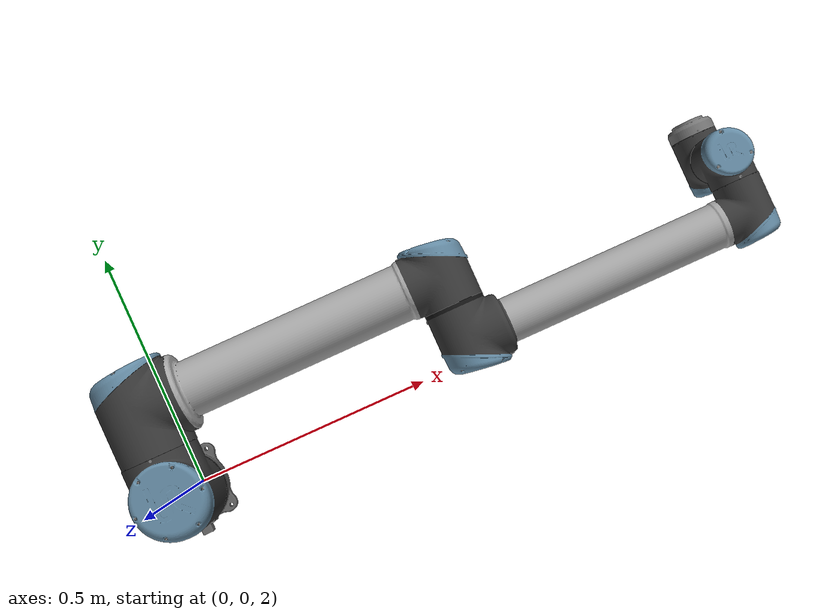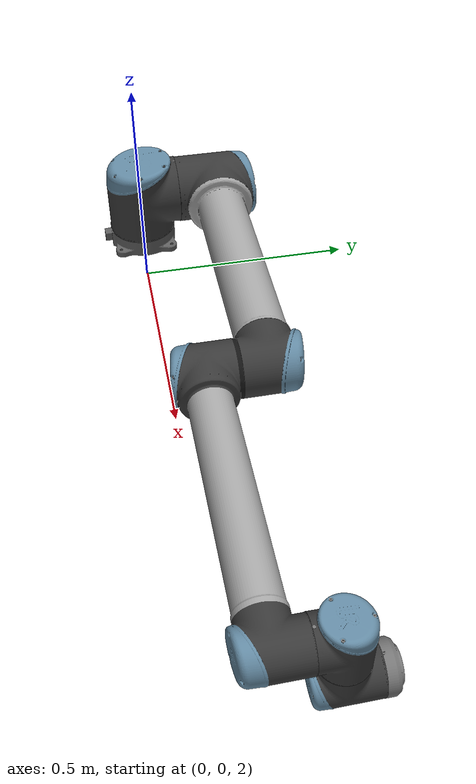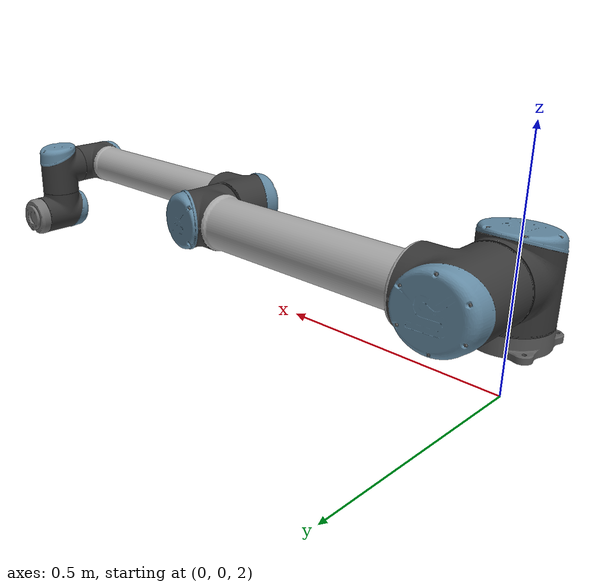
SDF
<sdf version="1.9">
 <world name="panda_world">
  <physics name="1ms" type="ignored">
   <max_step_size>0.001</max_step_size>
   <real_time_factor>1</real_time_factor>
   <real_time_update_rate>1000</real_time_update_rate>
  </physics>
  <plugin name="ignition::gazebo::systems::Physics" filename="ignition-gazebo-physics-system"/>
  <plugin name="ignition::gazebo::systems::UserCommands" filename="ignition-gazebo-user-commands-system"/>
  <plugin name="ignition::gazebo::systems::SceneBroadcaster" filename="ignition-gazebo-scene-broadcaster-system"/>
  <gravity>0 0 -9.8</gravity>
  <magnetic_field>6e-06 2.3e-05 -4.2e-05</magnetic_field>
  <atmosphere type="adiabatic"/>
  <scene><ambient>0.4 0.4 0.4 1</ambient><background>0.7 0.7 0.7 1</background><shadows>true</shadows></scene>
  <model name="ground_plane">
   <static>true</static>
   <link name="link">
    <collision name="collision">
     <geometry><plane><normal>0 0 1</normal><size>100 100</size></plane></geometry>
    </collision>
    <visual name="visual">
     <geometry><plane><normal>0 0 1</normal><size>100 100</size></plane></geometry>
     <material>
      <ambient>0.8 0.8 0.8 1</ambient>
      <diffuse>0.8 0.8 0.8 1</diffuse>
      <specular>0.8 0.8 0.8 1</specular>
     </material>
    </visual>
    <inertial>
     <mass>1</mass>
     <inertia><ixx>1</ixx><ixy>0</ixy><ixz>0</ixz><iyy>1</iyy><iyz>0</iyz><izz>1</izz></inertia>
    </inertial>
   </link>
  </model>
  <model name="ur10">
   <plugin filename="libjoint_command_plugin.so" name="JointCommandSystemPlugin">
    <publish>joint_positions</publish>
    <command>joint_commands</command>
   </plugin>
   <joint name="world_joint" type="fixed">
    <pose relative_to="__model__">0 0 2.115 0 -0 0</pose>
    <parent>world</parent>
    <child>base_link</child>
   </joint>
   <link name="base_link">
    <pose relative_to="world_joint">0 0 0 0 -0 0</pose>
    <inertial>
     <mass>4</mass>
     <inertia>
      <ixx>0.00610633</ixx>
      <ixy>0</ixy>
      <ixz>0</ixz>
      <iyy>0.00610633</iyy>
      <iyz>0</iyz>
      <izz>0.01125</izz>
     </inertia>
    </inertial>
    <collision name="base_link_collision">
     <geometry>
      <mesh>
       <scale>1 1 1</scale>
       <uri>file:///home/sam/dev/cpp/arm_ws/src/arm_simulator/meshes/ur10/collision/base.stl</uri>
      </mesh>
     </geometry>
    </collision>
    <visual name="base_link_visual">
     <geometry>
      <mesh>
       <scale>1 1 1</scale>
       <uri>file:///home/sam/dev/cpp/arm_ws/src/arm_simulator/meshes/ur10/visual/base.dae</uri>
      </mesh>
     </geometry>
    </visual>
   </link>
   <joint name="shoulder_pan_joint" type="revolute">
    <pose relative_to="base_link">0 0 0.1273 0 -0 0</pose>
    <parent>base_link</parent>
    <child>shoulder_link</child>
    <axis>
     <xyz>0 0 1</xyz>
     <limit><lower>-6.28319</lower><upper>6.28319</upper><effort>330</effort><velocity>2.16</velocity></limit>
     <dynamics>
      <damping>0</damping>
      <friction>0</friction>
      <spring_reference>0</spring_reference>
      <spring_stiffness>0</spring_stiffness>
     </dynamics>
    </axis>
    <initial_position>0.5</initial_position>
   </joint>
   <link name="shoulder_link">
    <pose relative_to="shoulder_pan_joint">0 0 0 0 -0 0</pose>
    <inertial>
     <mass>7.778</mass>
     <inertia>
      <ixx>0.0314743</ixx>
      <ixy>0</ixy>
      <ixz>0</ixz>
      <iyy>0.0314743</iyy>
      <iyz>0</iyz>
      <izz>0.0218756</izz>
     </inertia>
    </inertial>
    <collision name="shoulder_link_collision">
     <geometry>
      <mesh>
       <scale>1 1 1</scale>
       <uri>file:///home/sam/dev/cpp/arm_ws/src/arm_simulator/meshes/ur10/collision/shoulder.stl</uri>
      </mesh>
     </geometry>
    </collision>
    <visual name="shoulder_link_visual">
     <geometry>
      <mesh>
       <scale>1 1 1</scale>
       <uri>file:///home/sam/dev/cpp/arm_ws/src/arm_simulator/meshes/ur10/visual/shoulder.dae</uri>
      </mesh>
     </geometry>
    </visual>
    <self_collide>1</self_collide>
   </link>
   <joint name="shoulder_lift_joint" type="revolute">
    <pose relative_to="shoulder_link">0 0.220941 0 0 1.5708 0</pose>
    <parent>shoulder_link</parent>
    <child>upper_arm_link</child>
    <axis>
     <xyz>0 1 0</xyz>
     <limit><lower>-6.28319</lower><upper>6.28319</upper><effort>330</effort><velocity>2.16</velocity></limit>
     <dynamics>
      <damping>0</damping>
      <friction>0</friction>
      <spring_reference>0</spring_reference>
      <spring_stiffness>0</spring_stiffness>
     </dynamics>
    </axis>
   </joint>
   <link name="upper_arm_link">
    <pose relative_to="shoulder_lift_joint">0 0 0 0 -0 0</pose>
    <inertial>
     <pose>0 0 0.306 0 -0 0</pose>
     <mass>12.93</mass>
     <inertia>
      <ixx>0.421754</ixx>
      <ixy>0</ixy>
      <ixz>0</ixz>
      <iyy>0.421754</iyy>
      <iyz>0</iyz>
      <izz>0.0363656</izz>
     </inertia>
    </inertial>
    <collision name="upper_arm_link_collision">
     <geometry>
      <mesh>
       <scale>1 1 1</scale>
       <uri>file:///home/sam/dev/cpp/arm_ws/src/arm_simulator/meshes/ur10/collision/upperarm.stl</uri>
      </mesh>
     </geometry>
    </collision>
    <visual name="upper_arm_link_visual">
     <geometry>
      <mesh>
       <scale>1 1 1</scale>
       <uri>file:///home/sam/dev/cpp/arm_ws/src/arm_simulator/meshes/ur10/visual/upperarm.dae</uri>
      </mesh>
     </geometry>
    </visual>
    <self_collide>1</self_collide>
   </link>
   <joint name="elbow_joint" type="revolute">
    <pose relative_to="upper_arm_link">0 -0.1719 0.612 0 -0 0</pose>
    <parent>upper_arm_link</parent>
    <child>forearm_link</child>
    <axis>
     <xyz>0 1 0</xyz>
     <limit><lower>-3.14159</lower><upper>3.14159</upper><effort>150</effort><velocity>3.15</velocity></limit>
     <dynamics>
      <damping>0</damping>
      <friction>0</friction>
      <spring_reference>0</spring_reference>
      <spring_stiffness>0</spring_stiffness>
     </dynamics>
    </axis>
   </joint>
   <link name="forearm_link">
    <pose relative_to="elbow_joint">0 0 0 0 -0 0</pose>
    <inertial>
     <pose>0 0 0.28615 0 -0 0</pose>
     <mass>3.87</mass>
     <inertia>
      <ixx>0.11107</ixx>
      <ixy>0</ixy>
      <ixz>0</ixz>
      <iyy>0.11107</iyy>
      <iyz>0</iyz>
      <izz>0.0108844</izz>
     </inertia>
    </inertial>
    <collision name="forearm_link_collision">
     <geometry>
      <mesh>
       <scale>1 1 1</scale>
       <uri>file:///home/sam/dev/cpp/arm_ws/src/arm_simulator/meshes/ur10/collision/forearm.stl</uri>
      </mesh>
     </geometry>
    </collision>
    <visual name="forearm_link_visual">
     <geometry>
      <mesh>
       <scale>1 1 1</scale>
       <uri>file:///home/sam/dev/cpp/arm_ws/src/arm_simulator/meshes/ur10/visual/forearm.dae</uri>
      </mesh>
     </geometry>
    </visual>
    <self_collide>1</self_collide>
   </link>
   <joint name="wrist_1_joint" type="revolute">
    <pose relative_to="forearm_link">0 0 0.5723 0 1.5708 0</pose>
    <parent>forearm_link</parent>
    <child>wrist_1_link</child>
    <axis>
     <xyz>0 1 0</xyz>
     <limit><lower>-6.28319</lower><upper>6.28319</upper><effort>54</effort><velocity>3.2</velocity></limit>
     <dynamics>
      <damping>0</damping>
      <friction>0</friction>
      <spring_reference>0</spring_reference>
      <spring_stiffness>0</spring_stiffness>
     </dynamics>
    </axis>
   </joint>
   <link name="wrist_1_link">
    <pose relative_to="wrist_1_joint">0 0 0 0 -0 0</pose>
    <inertial>
     <mass>1.96</mass>
     <inertia>
      <ixx>0.00510825</ixx>
      <ixy>0</ixy>
      <ixz>0</ixz>
      <iyy>0.00510825</iyy>
      <iyz>0</iyz>
      <izz>0.0055125</izz>
     </inertia>
    </inertial>
    <collision name="wrist_1_link_collision">
     <geometry>
      <mesh>
       <scale>1 1 1</scale>
       <uri>file:///home/sam/dev/cpp/arm_ws/src/arm_simulator/meshes/ur10/collision/wrist1.stl</uri>
      </mesh>
     </geometry>
    </collision>
    <visual name="wrist_1_link_visual">
     <geometry>
      <mesh>
       <scale>1 1 1</scale>
       <uri>file:///home/sam/dev/cpp/arm_ws/src/arm_simulator/meshes/ur10/visual/wrist1.dae</uri>
      </mesh>
     </geometry>
    </visual>
    <self_collide>1</self_collide>
   </link>
   <joint name="wrist_2_joint" type="revolute">
    <pose relative_to="wrist_1_link">0 0.1149 0 0 -0 0</pose>
    <parent>wrist_1_link</parent>
    <child>wrist_2_link</child>
    <axis>
     <xyz>0 0 1</xyz>
     <limit><lower>-6.28319</lower><upper>6.28319</upper><effort>54</effort><velocity>3.2</velocity></limit>
     <dynamics>
      <damping>0</damping>
      <friction>0</friction>
      <spring_reference>0</spring_reference>
      <spring_stiffness>0</spring_stiffness>
     </dynamics>
    </axis>
   </joint>
   <link name="wrist_2_link">
    <pose relative_to="wrist_2_joint">0 0 0 0 -0 0</pose>
    <inertial>
     <mass>1.96</mass>
     <inertia>
      <ixx>0.00510825</ixx>
      <ixy>0</ixy>
      <ixz>0</ixz>
      <iyy>0.00510825</iyy>
      <iyz>0</iyz>
      <izz>0.0055125</izz>
     </inertia>
    </inertial>
    <collision name="wrist_2_link_collision">
     <geometry>
      <mesh>
       <scale>1 1 1</scale>
       <uri>file:///home/sam/dev/cpp/arm_ws/src/arm_simulator/meshes/ur10/collision/wrist2.stl</uri>
      </mesh>
     </geometry>
    </collision>
    <visual name="wrist_2_link_visual">
     <geometry>
      <mesh>
       <scale>1 1 1</scale>
       <uri>file:///home/sam/dev/cpp/arm_ws/src/arm_simulator/meshes/ur10/visual/wrist2.dae</uri>
      </mesh>
     </geometry>
    </visual>
    <self_collide>1</self_collide>
   </link>
   <joint name="wrist_3_joint" type="revolute">
    <pose relative_to="wrist_2_link">0 0 0.1157 0 -0 0</pose>
    <parent>wrist_2_link</parent>
    <child>wrist_3_link</child>
    <axis>
     <xyz>0 1 0</xyz>
     <limit><lower>-6.28319</lower><upper>6.28319</upper><effort>54</effort><velocity>3.2</velocity></limit>
     <dynamics><damping>0</damping><friction>0</friction><spring_stiffness>0</spring_stiffness></dynamics>
    </axis>
   </joint>
   <link name="wrist_3_link">
    <pose relative_to="wrist_3_joint">0 0 0 0 -0 0</pose>
    <inertial>
     <mass>0.202</mass>
     <inertia>
      <ixx>0.000526462</ixx>
      <ixy>0</ixy>
      <ixz>0</ixz>
      <iyy>0.000526462</iyy>
      <iyz>0</iyz>
      <izz>0.000568125</izz>
     </inertia>
    </inertial>
    <collision name="wrist_3_link_collision">
     <geometry>
      <mesh>
       <scale>1 1 1</scale>
       <uri>file:///home/sam/dev/cpp/arm_ws/src/arm_simulator/meshes/ur10/collision/wrist3.stl</uri>
      </mesh>
     </geometry>
    </collision>
    <collision name="wrist_3_link_fixed_joint_lump__ee_link_collision_1">
     <pose>-0 0.0822 0 0 -0 1.5708</pose>
     <geometry><box><size>0.01 0.01 0.01</size></box></geometry>
    </collision>
    <visual name="wrist_3_link_visual">
     <geometry>
      <mesh>
       <scale>1 1 1</scale>
       <uri>file:///home/sam/dev/cpp/arm_ws/src/arm_simulator/meshes/ur10/visual/wrist3.dae</uri>
      </mesh>
     </geometry>
    </visual>
    <self_collide>1</self_collide>
   </link>
  </model>
  <light name="sun" type="directional">
   <pose>0 0 10 0 -0 0</pose>
   <intensity>1</intensity>
   <direction>-0.5 0.1 -0.9</direction>
   <diffuse>0.8 0.8 0.8 1</diffuse>
   <specular>0.2 0.2 0.2 1</specular>
   <attenuation>
    <range>1000</range>
    <linear>0.01</linear>
    <constant>0.90000000000000002</constant>
    <quadratic>0.001</quadratic>
   </attenuation>
   <spot><inner_angle>0</inner_angle><outer_angle>0</outer_angle><falloff>0</falloff></spot>
  </light>
 </world>
</sdf>
